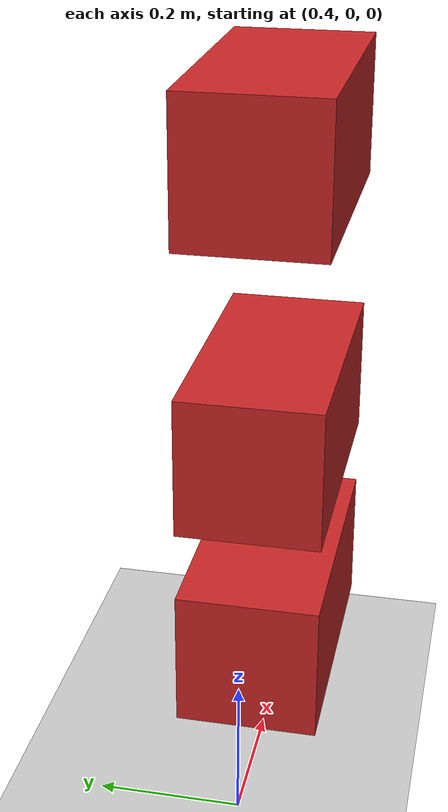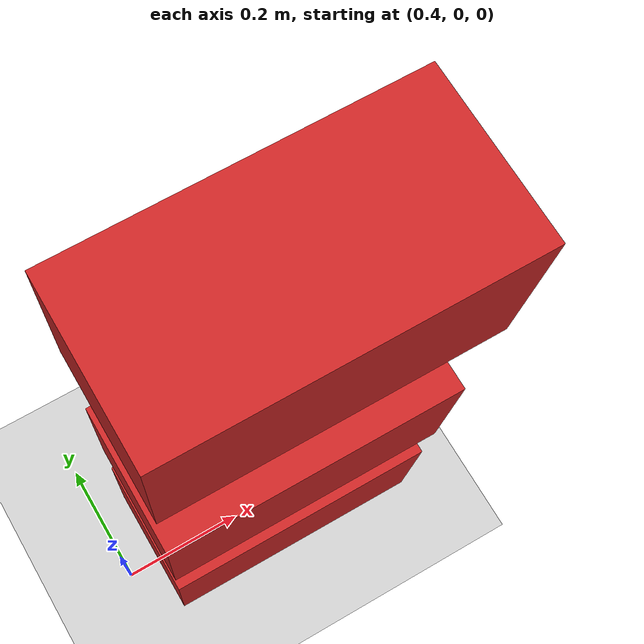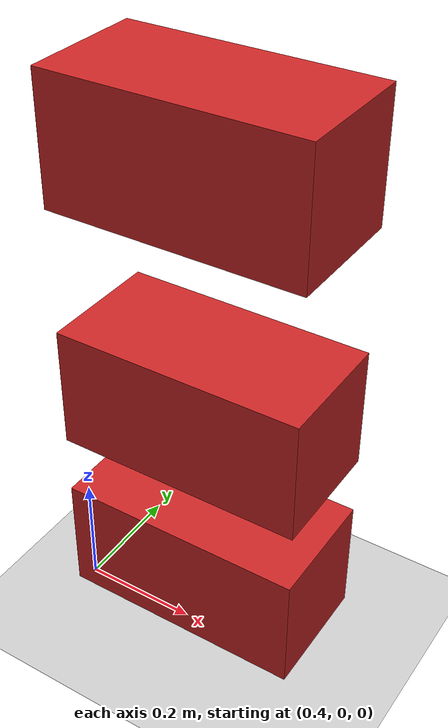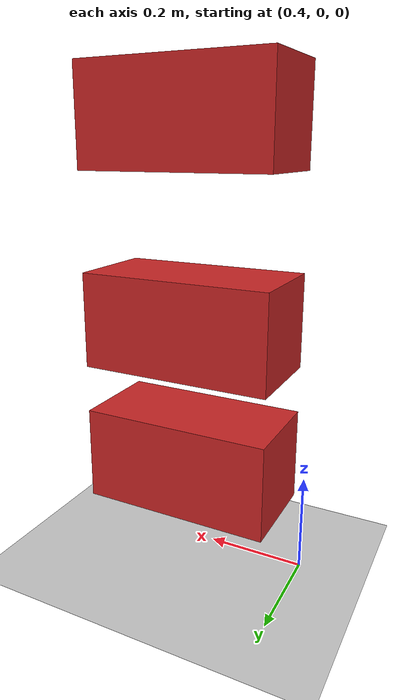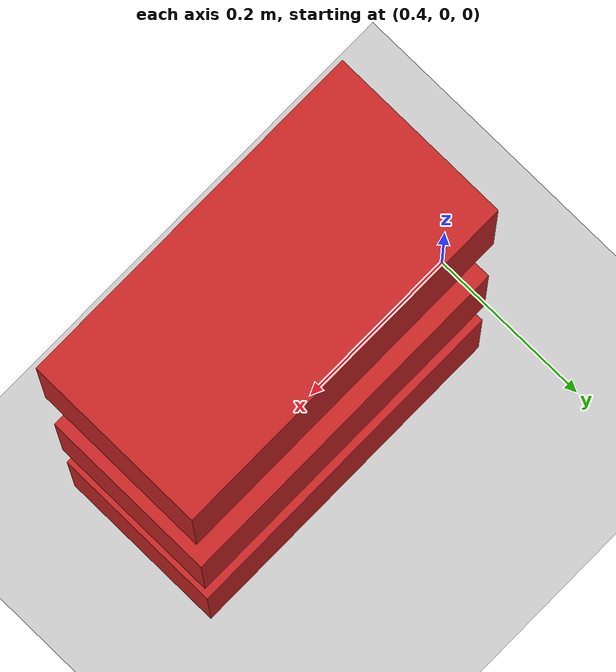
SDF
<?xml version="1.0" encoding="UTF-8"?>
<sdf version="1.5">
  <world name="default">
    <!-- A gazebo links attacher -->
    <plugin name="ros_link_attacher_plugin" filename="libgazebo_ros_link_attacher.so"/>
    <include>
      <uri>model://ground_plane</uri>
    </include>

    <!-- Add a boxes model -->
    <model name="my_box_1">
      <pose>0.65 0 0.2 0 0 0</pose>
      <link name="my_box_link">
        <collision name="my_box_collision">
          <geometry>
            <box><size>0.4 0.2 0.2</size></box>
          </geometry>
        </collision>
        <inertial>
          <mass>2.0</mass>
        </inertial>
        <visual name="my_box_visual">
          <geometry>
            <box><size>0.4 0.2 0.2</size></box>
          </geometry>
          <material>
            <script>
              <uri>file://media/materials/scripts/gazebo.material</uri>
              <name>Gazebo/Red</name>
            </script>
          </material>
        </visual>
      </link>
    </model>

    <model name="my_box_2">
      <pose>0.65 0 0.5 0 0 0</pose>
      <link name="my_box_link">
        <collision name="my_box_collision">
          <geometry>
            <box><size>0.4 0.2 0.2</size></box>
          </geometry>
        </collision>
        <inertial>
          <mass>2.0</mass>
        </inertial>
        <visual name="my_box_visual">
          <geometry>
            <box><size>0.4 0.2 0.2</size></box>
          </geometry>
          <material>
            <script>
              <uri>file://media/materials/scripts/gazebo.material</uri>
              <name>Gazebo/Red</name>
            </script>
          </material>
        </visual>
      </link>
    </model>

    <model name="my_box_3">
      <pose>0.65 0 0.9 0 0 0</pose>
      <link name="my_box_link">
        <collision name="my_box_collision">
          <geometry>
            <box><size>0.4 0.2 0.2</size></box>
          </geometry>
        </collision>
        <inertial>
          <mass>2.0</mass>
        </inertial>
        <visual name="my_box_visual">
          <geometry>
            <box><size>0.4 0.2 0.2</size></box>
          </geometry>
          <material>
            <script>
              <uri>file://media/materials/scripts/gazebo.material</uri>
              <name>Gazebo/Red</name>
            </script>
          </material>
        </visual>
      </link>
    </model>

    <!-- Enable gravity -->
    <gravity>0 0 -9.81</gravity>  <!-- set the acceleration due to gravity -->
    <physics name="default_physics" default="1" type="ode">
      <max_step_size>0.001</max_step_size>  <!-- set the maximum time step for physics simulation -->
      <real_time_factor>1.0</real_time_factor>  <!-- set the simulation time scaling factor -->
      <real_time_update_rate>1000.0</real_time_update_rate>  <!-- set the simulation update rate in Hz -->
      <ode>
        <solver>
          <type>quick</type>  <!-- choose the type of solver for physics simulation -->
          <iters>50</iters>  <!-- set the number of iterations for the solver -->
          <sor>1.3</sor>  <!-- set the successive over-relaxation factor for the solver -->
        </solver>
        <constraints>
          <cfm>0.0</cfm>  <!-- set the constraint force mixing parameter -->
          <erp>0.2</erp>  <!-- set the error reduction parameter -->
          <contact>
            <ode>
              <soft_cfm>0.0</soft_cfm>  <!-- set the contact soft constraint force mixing parameter -->
              <soft_erp>0.2</soft_erp>  <!-- set the contact soft error reduction parameter -->
              <max_vel>100.0</max_vel>  <!-- set the maximum contact velocity for collisions -->
              <min_depth>0.001</min_depth>  <!-- set the minimum contact depth for collisions -->
            </ode>
          </contact>
        </constraints>
      </ode>
    </physics>

    <!-- Add lighting -->
    <include>
      <uri>model://sun</uri>
    </include>
  </world>
</sdf>
